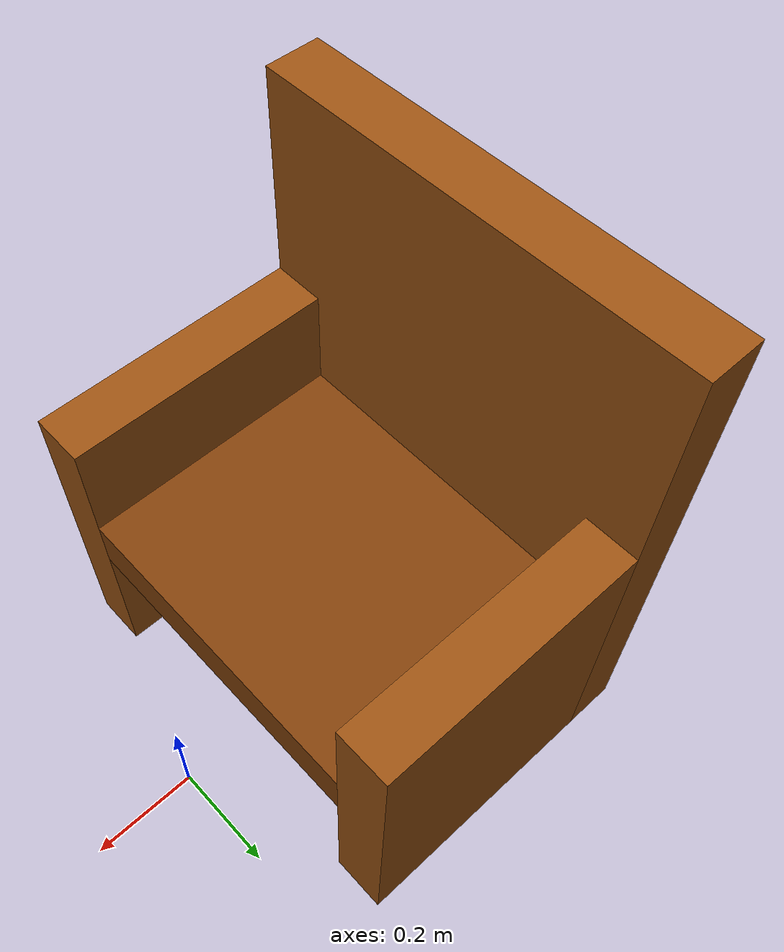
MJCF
<mujoco model="chair">
  <worldbody>
    <body name="chair" pos="-0.35 0 0.2" quat="0 0 1 0">
      <freejoint/>
      <geom name="seat" type="box" pos="0 0 -0.15" size=".25 .3 .05" mass="1." material="seat"/>
      <geom name="back" type="box" pos="0.3 0 -0.3" size=".05 0.4 .5" mass="1." quat="1 0 0 0" material="wood"/>
      <body name="left_arm" pos="0 0.35 -0.1" quat="0 1 0 0">
        <geom name="left_arm" type="box" pos="0 0 0" size=".25 0.05 .3" mass="1." quat="1 0 0 0" material="wood"/>
      </body>
      <body name="right_arm" pos="0 -0.35 -0.1" quat="0 1 0 0">
        <geom name="right_arm" type="box" pos="0 0 0" size=".25 0.05 .3" mass="1." quat="1 0 0 0" material="wood"/>
      </body>
    </body>
  </worldbody>

  <asset>
    <material name="seat" rgba="0.5 0.25 0.04 1"/>
    <material name="wood" rgba="0.6 0.32 0.07 1"/>
  </asset>
</mujoco>
